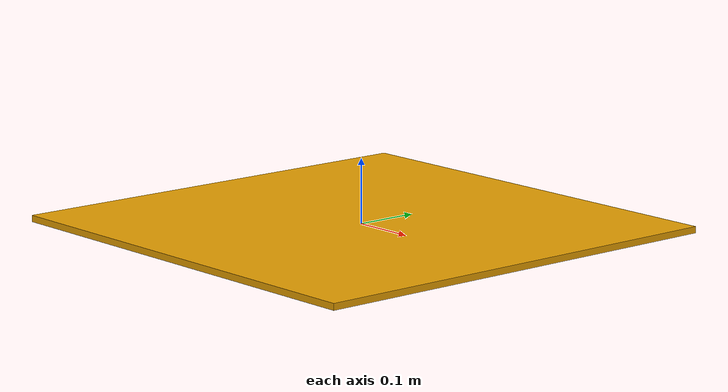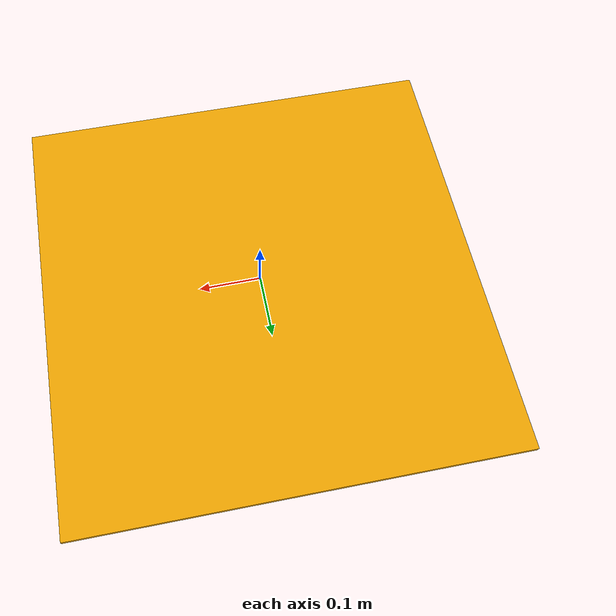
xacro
<?xml version="1.0"?>
<robot xmlns:xacro="http://www.ros.org/wiki/xacro" name="ar_marker_model">
  <xacro:arg name="marker_id" default="0"/>
  <xacro:macro name="ar_marker_xacro">
      <link name="ar_marker">
        <inertial>
          <origin xyz="0 0 0"/>
          <mass value="0.001" />
          <inertia  ixx="1e-6" ixy = "0" ixz = "0"
                    iyy="1e-6" iyz = "0"
                    izz="1e-6" />
        </inertial>
        <visual>
          <origin xyz="0 0 0"/>
          <geometry>
            <box size="0.7 0.7 0.01"/>
          </geometry>
        </visual>
      </link>
      <gazebo reference="ar_marker">
        <material>ar_marker_$(arg marker_id)</material>
      </gazebo>
      <link name="world"/>
      <joint name="world_fix" type="fixed">
        <parent link="world"/>
        <child link="ar_marker"/>
        <origin xyz="0 0 0" rpy="0 0 0"/>
      </joint>
  </xacro:macro>
  <xacro:ar_marker_xacro/>
</robot>
